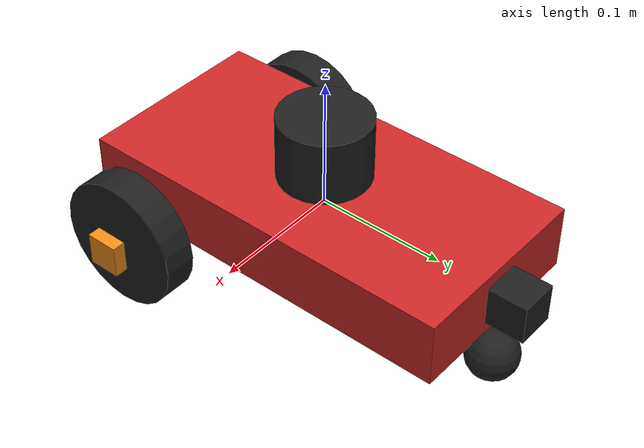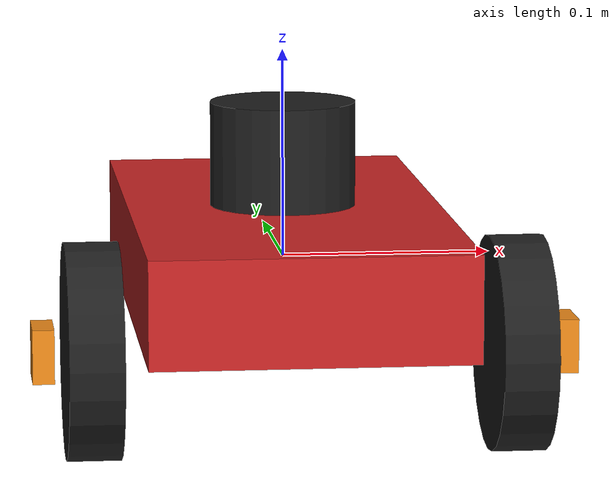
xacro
<?xml version='1.0'?>
<robot name="cart" xmlns:xacro="http://www.ros.org/wiki/xacro">
  <xacro:include filename="$(find cart_description)/urdf/cart.gazebo" />
  <xacro:include filename="$(find cart_description)/urdf/macros.xacro" />

  <xacro:property name="chassis_width" value="0.15" />
  <xacro:property name="chassis_length" value="0.3" />
  <xacro:property name="chassis_height" value="0.05" />
  <xacro:property name="chassis_mass" value="0.2" />

  <xacro:property name="rear_wheel_radius" value="0.05" />
  <xacro:property name="rear_wheel_thickness" value="0.025" />
  <xacro:property name="rear_wheel_mass" value="0.1" />
  <xacro:property name="rear_wheel_buffer" value="0.01" />

  <xacro:property name="front_wheel_radius" value="0.02" />
  <xacro:property name="front_wheel_mass" value="0.0" />

  <xacro:property name="lidar_height" value="0.05" />
  <xacro:property name="lidar_diameter" value="0.07" />

  <xacro:property name="camera_length" value="0.03" />

  <link name='chassis'>
    <pose>0 0 0 0 0 0</pose>
    <inertial>
      <mass value="${chassis_mass}"/>
      <origin xyz="0 0 0" rpy=" 0 0 0"/>
      <xacro:box_inertia m="${chassis_mass}" x="${chassis_width}" y="${chassis_length}" z="${chassis_height}" />
    </inertial>
    <collision>
      <origin xyz="0.0 0 0" rpy=" 0 0 0"/>
      <geometry>
        <box size="${chassis_width} ${chassis_length} ${chassis_height}"/>
      </geometry>
    </collision>
    <visual>
      <origin xyz="0.0 0 0" rpy=" 0 0 0"/>
      <geometry>
        <box size="${chassis_width} ${chassis_length} ${chassis_height}"/>
      </geometry>
    </visual>
  </link>

  <link name="right_wheel">
    <collision>
      <origin xyz="0 0 0" rpy="0 0 0"/>
      <geometry>
        <cylinder length="${rear_wheel_thickness}" radius="${rear_wheel_radius}"/>
      </geometry>
    </collision>
    <visual>
      <origin xyz="0 0 0" rpy="0 0 0"/>
      <geometry>
        <cylinder length="${rear_wheel_thickness}" radius="${rear_wheel_radius}"/>
      </geometry>
    </visual>
    <inertial>
      <origin xyz="0 0 0" rpy="0 0 0"/>
      <mass value="${rear_wheel_mass}"/>
      <xacro:cylinder_inertia m="${rear_wheel_mass}" r="${rear_wheel_radius / 2}" h="${rear_wheel_thickness}"/>
    </inertial>
    <surface>
        <friction>
          <ode>
            <mu>10</mu>
            <mu2>10</mu2>
          </ode>
        </friction>
      </surface>
  </link>

  <link name="left_wheel">
    <collision>
      <origin xyz="0 0 0" rpy="0 0 0"/>
      <geometry>
        <cylinder length="${rear_wheel_thickness}" radius="${rear_wheel_radius}"/>
      </geometry>
    </collision>
    <visual>
      <origin xyz="0 0 0" rpy="0 0 0"/>
      <geometry>
        <cylinder length="${rear_wheel_thickness}" radius="${rear_wheel_radius}"/>
      </geometry>
    </visual>
    <inertial>
      <origin xyz="0 0 0" rpy="0 0 0"/>
      <mass value="${rear_wheel_mass}"/>
      <xacro:cylinder_inertia m="${rear_wheel_mass}" r="${rear_wheel_radius / 2}" h="${rear_wheel_thickness}"/>
    </inertial>
    <surface>
        <friction>
          <ode>
            <mu>10</mu>
            <mu2>10</mu2>
          </ode>
        </friction>
      </surface>
  </link>

  <link name="right_wheel_hub">
    <visual>
      <origin xyz="0 0 0.01" rpy="0 0 0"/>
      <geometry>
        <box size="${rear_wheel_radius / 2} ${rear_wheel_radius / 2} 0.01"/>
      </geometry>
    </visual>
  </link>

  <link name="left_wheel_hub">
    <visual>
      <origin xyz="0 0 0.01" rpy="0 0 0"/>
      <geometry>
        <box size="${rear_wheel_radius / 2} ${rear_wheel_radius / 2} 0.01"/>
      </geometry>
    </visual>
  </link>

  <link name="front_wheel">
    <collision>
      <origin xyz="0 0 0" rpy="0 0 0"/>
      <geometry>
        <sphere radius="${front_wheel_radius}"/>
      </geometry>
    </collision>
    <visual>
      <origin xyz="0 0 0" rpy="0 0 0"/>
      <geometry>
        <sphere radius="${front_wheel_radius}"/>
      </geometry>
    </visual>
    <inertial>
      <origin xyz="0 0 0" rpy="0 0 0"/>
      <mass value="${front_wheel_mass}"/>
      <xacro:sphere_inertia m="${front_wheel_mass}" r="${front_wheel_radius}" />
    </inertial>
    <surface>
        <friction>
          <ode>
            <mu>0.0</mu>
            <mu2>0.0</mu2>
            <slip>1.0</slip>
            <slip2>1.0</slip2>
          </ode>
        </friction>
      </surface>
  </link>

  <link name='front_camera'>
    <visual>
      <origin xyz="0 0 0" rpy=" 0 0 0"/>
      <geometry>
        <box size="${camera_length} ${camera_length} ${camera_length}"/>
      </geometry>
    </visual>
  </link>

  <link name='lidar'>
    <visual>
      <origin xyz="0.0 0 0" rpy=" 0 0 0"/>
      <geometry>
        <cylinder length="${lidar_height}" radius="${lidar_diameter / 2}"/>
      </geometry>
    </visual>
  </link>

  <joint type="continuous" name="right_wheel_hinge">
    <origin xyz="${chassis_width / 2 + rear_wheel_thickness / 2 + rear_wheel_buffer} ${-chassis_length / 2 + rear_wheel_radius} ${-chassis_height / 2}" rpy="0 1.57079632679 0"/>
    <child link="right_wheel"/>
    <parent link="chassis"/>
    <axis xyz="0 0 -1"/>
    <limit effort="0.5" velocity="20" />
    <dynamics damping="0.0" friction="0.05"/>
  </joint>

  <joint type="continuous" name="left_wheel_hinge">
    <origin xyz="${-(chassis_width / 2 + rear_wheel_thickness / 2 + rear_wheel_buffer)} ${-chassis_length / 2 + rear_wheel_radius} ${-chassis_height / 2}" rpy="0 -1.57079632679 0"/>
    <child link="left_wheel"/>
    <parent link="chassis"/>
    <axis xyz="0 0 1"/>
    <limit effort="0.5" velocity="20" />
    <dynamics damping="0.0" friction="0.05"/>
  </joint>

  <joint type="fixed" name="front_wheel_hinge">
    <origin xyz="0 ${chassis_length / 2} ${-(chassis_height / 2 + rear_wheel_radius - front_wheel_radius)}" rpy="0 0 0"/>
    <child link="front_wheel"/>
    <parent link="chassis"/>
    <axis xyz="0 0 0"/>
  </joint>

  <joint type="fixed" name="right_hub_bolt">
    <origin xyz="0 0 ${rear_wheel_thickness / 2}" rpy="0 0 0"/>
    <child link="right_wheel_hub"/>
    <parent link="right_wheel"/>
    <axis xyz="0 0 0"/>
  </joint>

  <joint type="fixed" name="left_hub_bolt">
    <origin xyz="0 0 ${rear_wheel_thickness / 2}" rpy="0 0 0"/>
    <child link="left_wheel_hub"/>
    <parent link="left_wheel"/>
    <axis xyz="0 0 0"/>
  </joint>

  <joint type="fixed" name="front_camera_bolt">
    <origin xyz="0 ${chassis_length / 2 + camera_length / 2} 0" rpy="0 0 1.57"/>
    <child link="front_camera"/>
    <parent link="chassis"/>
    <axis xyz="0 0 0"/>
  </joint>

  <joint type="fixed" name="lidar_bolt">
    <origin xyz="0 0 ${chassis_height / 2 + lidar_height / 2}" rpy="0 0 1.57"/>
    <child link="lidar"/>
    <parent link="chassis"/>
    <axis xyz="0 0 0"/>
  </joint>

  <transmission name="right_wheel_transmission">
    <type>transmission_interface/SimpleTransmission</type>
    <joint name="right_wheel_hinge">
      <hardwareInterface>hardware_interface/EffortJointInterface</hardwareInterface>
    </joint>
    <actuator name="right_wheel_motor">
      <hardwareInterface>hardware_interface/EffortJointInterface</hardwareInterface>
      <mechanicalReduction>1</mechanicalReduction>
    </actuator>
  </transmission>

  <transmission name="left_wheel_transmission">
    <type>transmission_interface/SimpleTransmission</type>
    <joint name="left_wheel_hinge">
      <hardwareInterface>hardware_interface/EffortJointInterface</hardwareInterface>
    </joint>
    <actuator name="left_wheel_motor">
      <hardwareInterface>hardware_interface/EffortJointInterface</hardwareInterface>
      <mechanicalReduction>1</mechanicalReduction>
    </actuator>
  </transmission>

  <gazebo>
    <plugin name="gazebo_ros_control" filename="libgazebo_ros_control.so">
      <robotNamespace>/cart</robotNamespace>
      <legacyModeNS>true</legacyModeNS>
    </plugin>
  </gazebo>

</robot>
